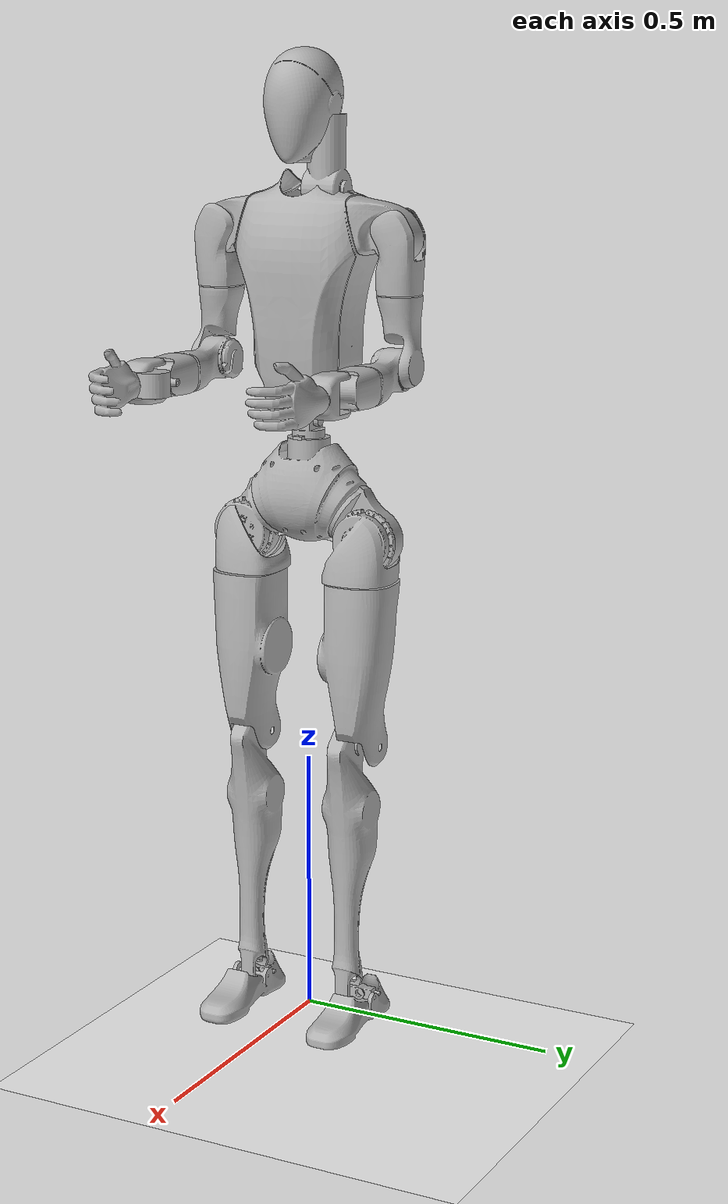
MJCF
<!-- Retargeting scene for the Unitree H2: the robot model plus a ground plane
     and lighting, mirroring assets/unitree_g1/g1_mocap_29dof.xml. -->
<mujoco model="h2_mocap">
  <include file="h2.xml"/>

  <statistic center="1.0 0.7 1.0" extent="0.8"/>
  <visual>
    <headlight diffuse="0.6 0.6 0.6" ambient="0.1 0.1 0.1" specular="0.9 0.9 0.9"/>
    <rgba haze="0.15 0.25 0.35 1"/>
    <global azimuth="-140" elevation="-20" offwidth="2080" offheight="1170"/>
  </visual>

  <asset>
    <texture type="skybox" builtin="gradient" rgb1=".4 .5 .6" rgb2="0 0 0" width="100" height="100"/>
    <texture type="2d" name="groundplane" builtin="checker" mark="edge" rgb1="1 1 1" rgb2="1 1 1" markrgb="0 0 0"
      width="300" height="300"/>
    <material name="groundplane" texture="groundplane" texuniform="true" texrepeat="5 5" reflectance="0"/>
  </asset>

  <worldbody>
    <geom name="floor" size="0 0 0.01" type="plane" material="groundplane" contype="1" conaffinity="0" priority="1"
      friction="0.6" condim="3"/>
    <light diffuse=".5 .5 .5" pos="-3 -3 5" dir="3 3 -5" castshadow="true"/>
  </worldbody>
</mujoco>

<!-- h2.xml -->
<mujoco model="h2">
  <compiler angle="radian" meshdir="meshes"/>

  <default>
    <default class="h2">
      <default class="visual">
        <geom type="mesh" density="0" contype="0" conaffinity="0" group="2"/>
      </default>
      <default class="collision">
        <geom type="capsule" priority="1" condim="6" group="3"/>
        <default class="foot_capsule">
          <geom size="0.01"/>
        </default>
      </default>
      <site rgba="1 0 0 1" group="5"/>
    </default>
  </default>

  <asset>
    <mesh name="pelvis" file="pelvis.stl"/>
    <mesh name="waist_yaw_link" file="waist_yaw_link.stl"/>
    <mesh name="waist_roll_link" file="waist_roll_link.stl"/>
    <mesh name="torso_link" file="torso_link.stl"/>
    <mesh name="head_pitch_link" file="head_pitch_link.stl"/>
    <mesh name="head_yaw_link" file="head_yaw_link.stl"/>
    <mesh name="right_shoulder_pitch_link" file="right_shoulder_pitch_link.stl"/>
    <mesh name="right_shoulder_roll_link" file="right_shoulder_roll_link.stl"/>
    <mesh name="right_shoulder_yaw_link" file="right_shoulder_yaw_link.stl"/>
    <mesh name="right_elbow_link" file="right_elbow_link.stl"/>
    <mesh name="right_wrist_roll_link" file="right_wrist_roll_link.stl"/>
    <mesh name="right_wrist_pitch_link" file="right_wrist_pitch_link.stl"/>
    <mesh name="right_wrist_yaw_link" file="right_wrist_yaw_link.stl"/>
    <mesh name="left_shoulder_pitch_link" file="left_shoulder_pitch_link.stl"/>
    <mesh name="left_shoulder_roll_link" file="left_shoulder_roll_link.stl"/>
    <mesh name="left_shoulder_yaw_link" file="left_shoulder_yaw_link.stl"/>
    <mesh name="left_elbow_link" file="left_elbow_link.stl"/>
    <mesh name="left_wrist_roll_link" file="left_wrist_roll_link.stl"/>
    <mesh name="left_wrist_pitch_link" file="left_wrist_pitch_link.stl"/>
    <mesh name="left_wrist_yaw_link" file="left_wrist_yaw_link.stl"/>
    <mesh name="left_hip_pitch_link" file="left_hip_pitch_link.stl"/>
    <mesh name="left_hip_roll_link" file="left_hip_roll_link.stl"/>
    <mesh name="left_hip_yaw_link" file="left_hip_yaw_link.stl"/>
    <mesh name="left_knee_link" file="left_knee_link.stl"/>
    <mesh name="left_ankle_roll_link" file="left_ankle_roll_link.stl"/>
    <mesh name="left_ankle_pitch_link" file="left_ankle_pitch_link.stl"/>
    <mesh name="right_hip_pitch_link" file="right_hip_pitch_link.stl"/>
    <mesh name="right_hip_roll_link" file="right_hip_roll_link.stl"/>
    <mesh name="right_hip_yaw_link" file="right_hip_yaw_link.stl"/>
    <mesh name="right_knee_link" file="right_knee_link.stl"/>
    <mesh name="right_ankle_roll_link" file="right_ankle_roll_link.stl"/>
    <mesh name="right_ankle_pitch_link" file="right_ankle_pitch_link.stl"/>
  </asset>

  <worldbody>
    <body name="pelvis" pos="0 0 1.03" childclass="h2">
      <inertial pos="0.00046244 -4.214e-05 -0.0147344" quat="0.707546 0.706201 -0.0235095 -0.0102787" mass="7.60468" diaginertia="0.0355137 0.0275324 0.0228779"/>
      <joint name="floating_base_joint" type="free" limited="false" actuatorfrclimited="false"/>
      <geom class="visual" rgba="0.7 0.7 0.7 1" mesh="pelvis"/>
      <geom name="pelvis_collision" class="collision" type="sphere" size="0.08" pos="0 0 0"/>
      <site name="imu" size="0.01" pos="0 0 0"/>
      <body name="left_hip_pitch_link" pos="0 0.0819279 -0.043723" quat="0.965926 -0.25882 0 0">
        <inertial pos="0.00300595 0.0593147 -0.0170915" quat="0.899485 0.435934 -0.0222136 -0.0198741" mass="2.79753" diaginertia="0.00510297 0.00410085 0.0034593"/>
        <joint name="left_hip_pitch_joint" pos="0 0 0" axis="0 1 0" range="-2.4526 2.77542"/>
        <geom class="visual" rgba="0.7 0.7 0.7 1" mesh="left_hip_pitch_link"/>
        <body name="left_hip_roll_link" pos="0.018422 0.0635 -0.022095" quat="0.965926 0.25882 0 0">
          <inertial pos="-0.0302619 -0.0046893 -0.0444985" quat="-0.0935812 0.633472 -0.0477755 0.766598" mass="0.627146" diaginertia="0.00200252 0.00167509 0.00128023"/>
          <joint name="left_hip_roll_joint" pos="0 0 0" axis="1 0 0" range="-0.467441 2.16886"/>
          <geom class="visual" rgba="0.7 0.7 0.7 1" mesh="left_hip_roll_link"/>
          <geom name="left_hip_collision" class="collision" size="0.06" fromto="-0.013 0 0 -0.013 0 -0.025"/>
          <body name="left_hip_yaw_link" pos="-0.0047433 -0.0057328 -0.075875">
            <inertial pos="0.00069408 -0.0108659 -0.113015" quat="0.621993 -0.0405952 0.0198637 0.781717" mass="7.08752" diaginertia="0.0514012 0.050596 0.0130067"/>
            <joint name="left_hip_yaw_joint" pos="0 0 0" axis="0 0 1" range="-2.827 2.827"/>
            <geom class="visual" rgba="0.7 0.7 0.7 1" mesh="left_hip_yaw_link"/>
            <geom name="left_thigh_collision" class="collision" size="0.05" fromto="0 0 -0.05 0.015 0 -0.25"/>
            <body name="left_knee_link" pos="-0.010386 -0.0042181 -0.31742">
              <inertial pos="0.00461331 0 -0.167155" quat="0.689662 0.00325283 0.00290593 0.724118" mass="3.5534" diaginertia="0.0512388 0.0510884 0.00333998"/>
              <joint name="left_knee_joint" pos="0 0 0" axis="0 1 0" range="-0.08725 2.53025"/>
              <geom class="visual" rgba="0.7 0.7 0.7 1" mesh="left_knee_link"/>
              <geom name="left_shin_collision" class="collision" size="0.03" fromto="0.03 0 -0.05 0 0 -0.2"/>
              <geom name="left_linkage_brace_collision" class="collision" size="0.02" fromto="0 0 -0.28 0.02 0 -0.45"/>
              <body name="left_ankle_roll_link" pos="0.018383 0 -0.49662">
                <inertial pos="-0.0174063 6.424e-05 -0.0002146" quat="0.499157 0.502573 -0.497809 0.500449" mass="0.123182" diaginertia="4.00501e-05 3.43207e-05 1.44993e-05"/>
                <joint name="left_ankle_roll_joint" pos="0 0 0" axis="1 0 0" range="-0.349066 0.296706"/>
                <geom class="visual" rgba="0.7 0.7 0.7 1" mesh="left_ankle_roll_link"/>
                <body name="left_ankle_pitch_link" pos="0 -0.0368 0">
                  <inertial pos="0.032059 0.0370053 -0.0288282" quat="6.19452e-05 0.72345 -3.0004e-05 0.690377" mass="0.844967" diaginertia="0.00438317 0.00410964 0.000599978"/>
                  <joint name="left_ankle_pitch_joint" pos="0 0 0" axis="0 1 0" range="-1.13446 0.610865"/>
                  <geom class="visual" rgba="0.7 0.7 0.7 1" mesh="left_ankle_pitch_link"/>
                  <geom name="left_foot1_collision" class="foot_capsule" fromto="0.13 0.008 -0.038 0.08 0.008 -0.038"/>
                  <geom name="left_foot2_collision" class="foot_capsule" fromto="-0.065 0.018 -0.038 0.14 0.018 -0.038"/>
                  <geom name="left_foot3_collision" class="foot_capsule" fromto="-0.068 0.027 -0.038 0.145 0.027 -0.038"/>
                  <geom name="left_foot4_collision" class="foot_capsule" fromto="-0.07 0.037 -0.038 0.15 0.037 -0.038"/>
                  <geom name="left_foot5_collision" class="foot_capsule" fromto="-0.068 0.047 -0.038 0.145 0.047 -0.038"/>
                  <geom name="left_foot6_collision" class="foot_capsule" fromto="-0.065 0.055 -0.038 0.14 0.055 -0.038"/>
                  <geom name="left_foot7_collision" class="foot_capsule" fromto="0.13 0.065 -0.038 0.08 0.065 -0.038"/>
                  <site name="left_foot" rgba="1 0 0 1" pos="0.04 0.037 -0.048"/>
                </body>
              </body>
            </body>
          </body>
        </body>
      </body>
      <body name="right_hip_pitch_link" pos="0 -0.0803801 -0.046403" quat="0.965926 0.25882 0 0">
        <inertial pos="0.00300595 -0.0593147 -0.0170915" quat="0.435934 0.899485 0.0198741 0.0222136" mass="2.79753" diaginertia="0.00510297 0.00410085 0.0034593"/>
        <joint name="right_hip_pitch_joint" pos="0 0 0" axis="0 1 0" range="-2.4526 2.77542"/>
        <geom class="visual" rgba="0.7 0.7 0.7 1" mesh="right_hip_pitch_link"/>
        <body name="right_hip_roll_link" pos="0.037774 -0.0635 -0.019" quat="0.965926 -0.25882 0 0">
          <inertial pos="-0.0302619 0.0046893 -0.0444985" quat="0.0935812 0.633472 0.0477755 0.766598" mass="0.627146" diaginertia="0.00200252 0.00167509 0.00128023"/>
          <joint name="right_hip_roll_joint" pos="0 0 0" axis="1 0 0" range="-2.16886 0.467441"/>
          <geom class="visual" rgba="0.7 0.7 0.7 1" mesh="right_hip_roll_link"/>
          <geom name="right_hip_collision" class="collision" size="0.06" fromto="-0.033 0 0 -0.033 0 -0.025"/>
          <body name="right_hip_yaw_link" pos="-0.024111 0.0057328 -0.075875">
            <inertial pos="0.00069408 0.0108659 -0.113015" quat="0.781717 0.0198637 -0.0405952 0.621993" mass="7.08752" diaginertia="0.0514012 0.050596 0.0130067"/>
            <joint name="right_hip_yaw_joint" pos="0 0 0" axis="0 0 1" range="-2.827 2.827"/>
            <geom class="visual" rgba="0.7 0.7 0.7 1" mesh="right_hip_yaw_link"/>
            <geom name="right_thigh_collision" class="collision" size="0.05" fromto="0 0 -0.05 0.015 0 -0.25"/>
            <body name="right_knee_link" pos="-0.010386 0.0042181 -0.31742">
              <inertial pos="0.00461331 0 -0.167155" quat="0.724118 0.00290593 0.00325283 0.689662" mass="3.5534" diaginertia="0.0512388 0.0510884 0.00333998"/>
              <joint name="right_knee_joint" pos="0 0 0" axis="0 1 0" range="-0.08725 2.53025"/>
              <geom class="visual" rgba="0.7 0.7 0.7 1" mesh="right_knee_link"/>
              <geom name="right_shin_collision" class="collision" size="0.03" fromto="0.03 0 -0.05 0 0 -0.2"/>
              <geom name="right_linkage_brace_collision" class="collision" size="0.02" fromto="0 0 -0.28 0.02 0 -0.45"/>
              <body name="right_ankle_roll_link" pos="0.018383 0 -0.49662">
                <inertial pos="-0.0174063 -6.424e-05 -0.0002146" quat="0.502573 0.499157 -0.500449 0.497809" mass="0.123182" diaginertia="4.00501e-05 3.43207e-05 1.44993e-05"/>
                <joint name="right_ankle_roll_joint" pos="0 0 0" axis="1 0 0" range="-0.296706 0.349066"/>
                <geom class="visual" rgba="0.7 0.7 0.7 1" mesh="right_ankle_roll_link"/>
                <body name="right_ankle_pitch_link" pos="0 0.0373 0">
                  <inertial pos="0.032059 -0.0370053 -0.0288282" quat="-6.19452e-05 0.72345 3.0004e-05 0.690377" mass="0.844967" diaginertia="0.00438317 0.00410964 0.000599978"/>
                  <joint name="right_ankle_pitch_joint" pos="0 0 0" axis="0 1 0" range="-1.13446 0.610865"/>
                  <geom class="visual" rgba="0.7 0.7 0.7 1" mesh="right_ankle_pitch_link"/>
                  <geom name="right_foot1_collision" class="foot_capsule" fromto="0.13 -0.008 -0.038 0.08 -0.008 -0.038"/>
                  <geom name="right_foot2_collision" class="foot_capsule" fromto="-0.065 -0.018 -0.038 0.14 -0.018 -0.038"/>
                  <geom name="right_foot3_collision" class="foot_capsule" fromto="-0.068 -0.027 -0.038 0.145 -0.027 -0.038"/>
                  <geom name="right_foot4_collision" class="foot_capsule" fromto="-0.07 -0.037 -0.038 0.15 -0.037 -0.038"/>
                  <geom name="right_foot5_collision" class="foot_capsule" fromto="-0.068 -0.047 -0.038 0.145 -0.047 -0.038"/>
                  <geom name="right_foot6_collision" class="foot_capsule" fromto="-0.065 -0.055 -0.038 0.14 -0.055 -0.038"/>
                  <geom name="right_foot7_collision" class="foot_capsule" fromto="0.13 -0.065 -0.038 0.08 -0.065 -0.038"/>
                  <site name="right_foot" rgba="1 0 0 1" pos="0.04 -0.037 -0.048"/>
                </body>
              </body>
            </body>
          </body>
        </body>
      </body>
      <body name="waist_yaw_link" pos="0 0.0015099 0.090537">
        <inertial pos="0.00626994 0 0.0169696" quat="0 0.717728 0 0.696323" mass="0.279762" diaginertia="0.000311422 0.0002473 0.000123348"/>
        <joint name="waist_yaw_joint" pos="0 0 0" axis="0 0 1" range="-1.7453 1.7453"/>
        <geom class="visual" rgba="0.7 0.7 0.7 1" mesh="waist_yaw_link"/>
        <body name="waist_roll_link" pos="0 -0.0015099 0.0325">
          <inertial pos="0 0.00128474 0" quat="0 0.707107 0 0.707107" mass="0.0658504" diaginertia="1.58e-05 1.041e-05 8.09e-06"/>
          <joint name="waist_roll_joint" pos="0 0 0" axis="1 0 0" range="-0.5236 0.5236"/>
          <geom class="visual" rgba="0.7 0.7 0.7 1" mesh="waist_roll_link"/>
          <body name="torso_link">
            <inertial pos="0.0134247 0.0054719 0.210501" quat="0.999399 -0.0341887 0.00399831 0.00403179" mass="15.8703" diaginertia="0.273064 0.244383 0.0840858"/>
            <joint name="waist_pitch_joint" pos="0 0 0" axis="0 1 0" range="-0.43633 0.5236"/>
            <geom class="visual" rgba="0.7 0.7 0.7 1" mesh="torso_link"/>
            <geom name="torso_collision" class="collision" size="0.09" fromto="0.0 0 0.12 0.0 0 0.3"/>
            <body name="head_pitch_link" pos="-0.00011475 0.020709 0.42181">
              <inertial pos="5.279e-08 -0.00035318 0.045125" quat="0.999996 -0.000955249 -0.00262397 -0.000580497" mass="1.82" diaginertia="0.00538697 0.00532442 0.00140982"/>
              <geom class="visual" rgba="0.7 0.7 0.7 1" mesh="head_pitch_link"/>
              <body name="head_yaw_link" pos="0 -0.0189 0.1325">
                <inertial pos="0.0219 0 0.0187" quat="0.667311 -0.227767 -0.231751 0.670156" mass="1.3" diaginertia="0.00535274 0.00472336 0.00378091"/>
                <geom class="visual" rgba="0.7 0.7 0.7 1" mesh="head_yaw_link"/>
                <geom name="head_collision" class="collision" type="sphere" size="0.065" pos="0.02 0 0.02"/>
              </body>
            </body>
            <body name="left_shoulder_pitch_link" pos="0.0019779 0.11553 0.35792" quat="0.990959 0.134164 0 0">
              <inertial pos="0.00296153 0.0520268 -0.025045" quat="0.955852 0.29138 -0.0379121 0.00288293" mass="1.06056" diaginertia="0.00122192 0.00110581 0.000458834"/>
              <joint name="left_shoulder_pitch_joint" pos="0 0 0" axis="0 1 0" range="-2.61799 1.8326"/>
              <geom class="visual" rgba="0.7 0.7 0.7 1" mesh="left_shoulder_pitch_link"/>
              <body name="left_shoulder_roll_link" pos="-0.00082158 0.060413 -0.040043" quat="0.990959 -0.134164 0 0">
                <inertial pos="0 0.00415443 -0.0629422" quat="0.678366 0.110828 0.0778018 0.722138" mass="1.34511" diaginertia="0.00210225 0.00198513 0.00105666"/>
                <joint name="left_shoulder_roll_joint" pos="0 0 0" axis="1 0 0" range="-0.516617 2.63545"/>
                <geom class="visual" rgba="0.7 0.7 0.7 1" mesh="left_shoulder_roll_link"/>
                <body name="left_shoulder_yaw_link" pos="-0.0025946 0.0038061 -0.09623">
                  <inertial pos="0.00364187 0.0186515 -0.0558555" quat="0.995617 -0.0729116 -0.0584518 -0.00371547" mass="0.915717" diaginertia="0.00306267 0.00257349 0.00143042"/>
                  <joint name="left_shoulder_yaw_joint" pos="0 0 0" axis="0 0 1" range="-2.61799 2.61799"/>
                  <geom class="visual" rgba="0.7 0.7 0.7 1" mesh="left_shoulder_yaw_link"/>
                  <geom name="left_shoulder_yaw_collision" class="collision" size="0.035" fromto="0 0 -0.06 0 0 0.09"/>
                  <body name="left_elbow_link" pos="0.015424 0.020635 -0.13364">
                    <inertial pos="0.0459969 -0.0283296 -0.00661325" quat="0.520177 0.507229 0.507638 0.463074" mass="1.69432" diaginertia="0.00548751 0.00533836 0.000695052"/>
                    <joint name="left_elbow_joint" pos="0 0 0" axis="0 1 0" range="-0.986111 3.07178"/>
                    <geom class="visual" rgba="0.7 0.7 0.7 1" mesh="left_elbow_link"/>
                    <geom name="left_elbow_yaw_collision" class="collision" size="0.035" fromto="0 -0.025 -0.01 0.1 -0.025 -0.01"/>
                    <body name="left_wrist_roll_link" pos="0.13119 -0.021207 -0.013343">
                      <inertial pos="0.0337195 0.00237482 0.00031544" quat="-0.242945 0.638599 0.286806 0.671499" mass="0.969837" diaginertia="0.000926999 0.000903832 0.000852829"/>
                      <joint name="left_wrist_roll_joint" pos="0 0 0" axis="1 0 0" range="-2.61799 2.61799"/>
                      <geom class="visual" rgba="0.7 0.7 0.7 1" mesh="left_wrist_roll_link"/>
                      <body name="left_wrist_pitch_link" pos="0.080589 3.0398e-05 -0.0013317">
                        <inertial pos="0.01821 0.0314035 0.0115687" quat="0.977698 -0.037912 -0.203807 0.033629" mass="0.946953" diaginertia="0.000918192 0.00082104 0.000648419"/>
                        <joint name="left_wrist_pitch_joint" pos="0 0 0" axis="0 1 0" range="-0.436332 0.436332"/>
                        <geom class="visual" rgba="0.7 0.7 0.7 1" mesh="left_wrist_pitch_link"/>
                        <geom name="left_wrist_collision" class="collision" size="0.035" fromto="-0.03 0.0 0 0.05 0.0 0"/>
                        <body name="left_wrist_yaw_link" pos="0.028225 0.00048901 0.00058318">
                          <inertial pos="-0.0101173 0.00400457 -0.0173071" quat="0.554707 0.450933 0.585065 0.382961" mass="0.605752" diaginertia="0.000778685 0.00067164 0.000238076"/>
                          <joint name="left_wrist_yaw_joint" pos="0 0 0" axis="0 0 1" range="-1.22173 1.22173"/>
                          <geom class="visual" rgba="0.7 0.7 0.7 1" mesh="left_wrist_yaw_link"/>
                          <site name="left_palm" pos="0.08 0 0" size="0.01"/>
                          <geom name="left_hand_collision" class="collision" size="0.035" rgba="0.2 0.6 0.2 0.2" fromto="0.1 -0.01 0.0 0.18 -0.01 0.0"/>
                        </body>
                      </body>
                    </body>
                  </body>
                </body>
              </body>
            </body>
            <body name="right_shoulder_pitch_link" pos="0.0019706 -0.11185 0.35789" quat="0.990959 -0.134164 0 0">
              <inertial pos="0.00296153 -0.0520268 -0.025045" quat="0.955852 -0.291379 -0.0379149 -0.00289698" mass="1.06056" diaginertia="0.00122192 0.00110581 0.000458835"/>
              <joint name="right_shoulder_pitch_joint" pos="0 0 0" axis="0 1 0" range="-2.61799 1.8326"/>
              <geom class="visual" rgba="0.7 0.7 0.7 1" mesh="right_shoulder_pitch_link"/>
              <body name="right_shoulder_roll_link" pos="-0.00082577 -0.060403 -0.040059" quat="0.990959 0.134164 0 0">
                <inertial pos="0 -0.00415443 -0.0629422" quat="0.722138 0.0778018 0.110828 0.678366" mass="1.34511" diaginertia="0.00210225 0.00198513 0.00105666"/>
                <joint name="right_shoulder_roll_joint" pos="0 0 0" axis="1 0 0" range="-2.63545 0.516617"/>
                <geom class="visual" rgba="0.7 0.7 0.7 1" mesh="right_shoulder_roll_link"/>
                <body name="right_shoulder_yaw_link" pos="-0.0025949 -0.0037808 -0.096231">
                  <inertial pos="0.00364187 -0.0186515 -0.0558555" quat="0.995617 0.0729116 -0.0584518 0.00371547" mass="0.915717" diaginertia="0.00306267 0.00257349 0.00143042"/>
                  <joint name="right_shoulder_yaw_joint" pos="0 0 0" axis="0 0 1" range="-2.61799 2.61799"/>
                  <geom class="visual" rgba="0.7 0.7 0.7 1" mesh="right_shoulder_yaw_link"/>
                  <geom name="right_shoulder_yaw_collision" class="collision" size="0.035" fromto="0 0 -0.06 0 0 0.09"/>
                  <body name="right_elbow_link" pos="0.015346 -0.020599 -0.13363">
                    <inertial pos="0.0459969 0.0283296 -0.00661325" quat="0.463074 0.507638 0.507229 0.520177" mass="1.69432" diaginertia="0.00548751 0.00533836 0.000695052"/>
                    <joint name="right_elbow_joint" pos="0 0 0" axis="0 1 0" range="-0.986111 3.07178"/>
                    <geom class="visual" rgba="0.7 0.7 0.7 1" mesh="right_elbow_link"/>
                    <geom name="right_elbow_yaw_collision" class="collision" size="0.035" fromto="0 0.025 -0.01 0.1 0.025 -0.01"/>
                    <body name="right_wrist_roll_link" pos="0.13177 0.021197 -0.013782">
                      <inertial pos="0.0337195 -0.00237482 0.00031544" quat="0.242945 0.638599 -0.286806 0.671499" mass="0.969837" diaginertia="0.000926999 0.000903832 0.000852829"/>
                      <joint name="right_wrist_roll_joint" pos="0 0 0" axis="1 0 0" range="-2.61799 2.61799"/>
                      <geom class="visual" rgba="0.7 0.7 0.7 1" mesh="right_wrist_roll_link"/>
                      <body name="right_wrist_pitch_link" pos="0.076351 -0.00015864 0.0011464">
                        <inertial pos="0.01821 -0.0314035 0.0115687" quat="0.977698 0.037912 -0.203807 -0.033629" mass="0.946953" diaginertia="0.000918192 0.00082104 0.000648419"/>
                        <joint name="right_wrist_pitch_joint" pos="0 0 0" axis="0 1 0" range="-0.436332 0.436332"/>
                        <geom class="visual" rgba="0.7 0.7 0.7 1" mesh="right_wrist_pitch_link"/>
                        <geom name="right_wrist_collision" class="collision" size="0.035" fromto="-0.03 0.0 0 0.05 0.0 0"/>
                        <body name="right_wrist_yaw_link" pos="0.028195 5.8414e-05 -0.0012184">
                          <inertial pos="-0.0101173 -0.00400457 -0.0173071" quat="0.382961 0.585065 0.450933 0.554707" mass="0.605752" diaginertia="0.000778685 0.00067164 0.000238076"/>
                          <joint name="right_wrist_yaw_joint" pos="0 0 0" axis="0 0 1" range="-1.22173 1.22173"/>
                          <geom class="visual" rgba="0.7 0.7 0.7 1" mesh="right_wrist_yaw_link"/>
                          <site name="right_palm" pos="0.08 0 0" size="0.01"/>
                          <geom name="right_hand_collision" class="collision" size="0.035" rgba="0.2 0.6 0.2 0.2" fromto="0.1 0.01 0.0 0.18 0.01 0.0"/>
                        </body>
                      </body>
                    </body>
                  </body>
                </body>
              </body>
            </body>
          </body>
        </body>
      </body>
    </body>
  </worldbody>
  <contact>
    <exclude body1="left_elbow_link" body2="left_wrist_pitch_link"/>
    <exclude body1="right_elbow_link" body2="right_wrist_pitch_link"/>
    <exclude body1="pelvis" body2="right_hip_roll_link"/>
    <exclude body1="pelvis" body2="left_hip_roll_link"/>
  </contact>
  <sensor>
    <gyro name="imu_ang_vel" site="imu"/>
    <velocimeter name="imu_lin_vel" site="imu"/>
    <accelerometer name="imu_lin_acc" site="imu"/>
    <subtreeangmom name="root_angmom" body="torso_link"/>
  </sensor>
</mujoco>
